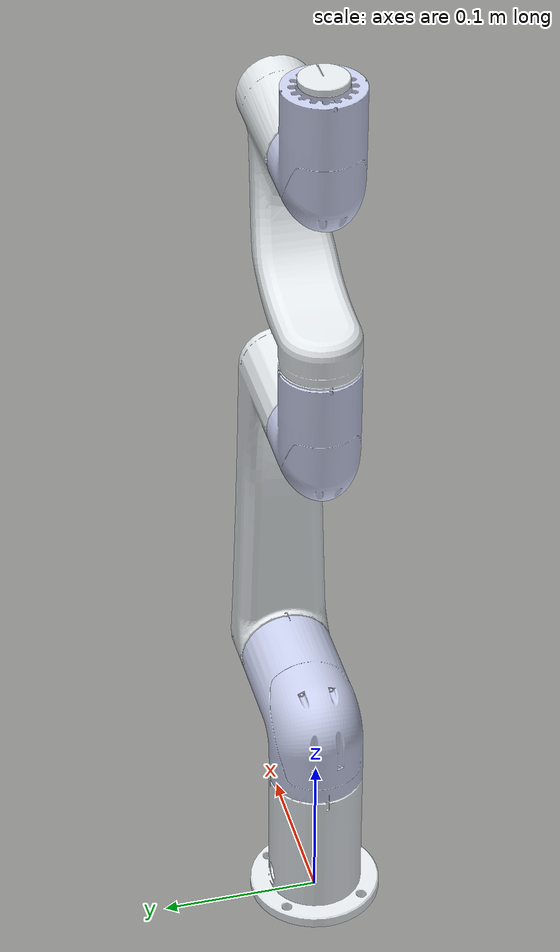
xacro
<?xml version="1.0"?>
<robot xmlns:xacro="http://www.ros.org/wiki/xacro" name="ti5_urdf">
    <xacro:arg name="initial_positions_file" default="initial_positions.yaml" />

    <!-- Import ti5_urdf urdf file -->
    <xacro:include filename="$(find ti5_urdf)/urdf/arm1.urdf" />

    <!-- Import control_xacro -->
    <xacro:include filename="ti5_urdf.ros2_control.xacro" />

    <xacro:ti5_urdf_ros2_control name="FakeSystem" initial_positions_file="$(arg initial_positions_file)"/>

</robot>

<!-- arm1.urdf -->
<robot
  name="ti5_urdf">
  <link
    name="base_link">
    <inertial>
      <origin
        xyz="-1.2717E-09 -0.0002019 0.03962"
        rpy="0 0 0" />
      <mass
        value="0.20694" />
      <inertia
        ixx="0.00032183"
        ixy="-5.3729E-08"
        ixz="-8.9527E-11"
        iyy="0.00032289"
        iyz="-7.6451E-07"
        izz="0.00019377" />
    </inertial>
    <visual>
      <origin
        xyz="0 0 0"
        rpy="0 0 0" />
      <geometry>
        <mesh
          filename="package://ti5_urdf/meshes/arm1/base_link.STL" />
      </geometry>
      <material
        name="">
        <color
          rgba="0.89804 0.91765 0.92941 1" />
      </material>
    </visual>
    <collision>
      <origin
        xyz="0 0 0"
        rpy="0 0 0" />
      <geometry>
        <mesh
          filename="package://ti5_urdf/meshes/arm1/base_link.STL" />
      </geometry>
    </collision>
  </link>
  <link
    name="A_Link">
    <inertial>
      <origin
        xyz="0.029013 3.1585E-06 0.030656"
        rpy="0 0 0" />
      <mass
        value="0.17006" />
      <inertia
        ixx="0.00014682"
        ixy="7.8151E-09"
        ixz="-5.421E-05"
        iyy="0.00020934"
        iyz="-1.9182E-08"
        izz="0.00020415" />
    </inertial>
    <visual>
      <origin
        xyz="0 0 0"
        rpy="0 0 0" />
      <geometry>
        <mesh
          filename="package://ti5_urdf/meshes/arm1/A_Link.STL" />
      </geometry>
      <material
        name="">
        <color
          rgba="0.79216 0.81961 0.93333 1" />
      </material>
    </visual>
    <collision>
      <origin
        xyz="0 0 0"
        rpy="0 0 0" />
      <geometry>
        <mesh
          filename="package://ti5_urdf/meshes/arm1/A_Link.STL" />
      </geometry>
    </collision>
  </link>
  <joint
    name="A"
    type="revolute">
    <origin
      xyz="-0.00018059 0 0.097"
      rpy="0 0 0" />
    <parent
      link="base_link" />
    <child
      link="A_Link" />
    <axis
      xyz="0 0 -1" />
    <limit
      lower="-3.14"
      upper="3.14"
      effort="0"
      velocity="0" />
  </joint>
  <link
    name="B_Link">
    <inertial>
      <origin
        xyz="1.7474E-06 0.11028 0.0067642"
        rpy="0 0 0" />
      <mass
        value="0.25215" />
      <inertia
        ixx="0.0018313"
        ixy="-9.1439E-09"
        ixz="-1.1859E-09"
        iyy="0.00014331"
        iyz="0.00013472"
        izz="0.0018654" />
    </inertial>
    <visual>
      <origin
        xyz="0 0 0"
        rpy="0 0 0" />
      <geometry>
        <mesh
          filename="package://ti5_urdf/meshes/arm1/B_Link.STL" />
      </geometry>
      <material
        name="">
        <color
          rgba="0.89804 0.91765 0.92941 1" />
      </material>
    </visual>
    <collision>
      <origin
        xyz="0 0 0"
        rpy="0 0 0" />
      <geometry>
        <mesh
          filename="package://ti5_urdf/meshes/arm1/B_Link.STL" />
      </geometry>
    </collision>
  </link>
  <joint
    name="B"
    type="revolute">
    <origin
      xyz="0.076181 0 0.039711"
      rpy="1.5708 0 1.5708" />
    <parent
      link="A_Link" />
    <child
      link="B_Link" />
    <axis
      xyz="0 0 -1" />
    <limit
      lower="-1.9"
      upper="1.9"
      effort="0"
      velocity="0" />
  </joint>
  <link
    name="C_Link">
    <inertial>
      <origin
        xyz="-4.9653E-06 -0.026863 0.027126"
        rpy="0 0 0" />
      <mass
        value="0.1028" />
      <inertia
        ixx="9.5672E-05"
        ixy="4.2051E-09"
        ixz="2.2694E-08"
        iyy="6.2054E-05"
        iyz="2.6805E-05"
        izz="8.7384E-05" />
    </inertial>
    <visual>
      <origin
        xyz="0 0 0"
        rpy="0 0 0" />
      <geometry>
        <mesh
          filename="package://ti5_urdf/meshes/arm1/C_Link.STL" />
      </geometry>
      <material
        name="">
        <color
          rgba="0.79216 0.81961 0.93333 1" />
      </material>
    </visual>
    <collision>
      <origin
        xyz="0 0 0"
        rpy="0 0 0" />
      <geometry>
        <mesh
          filename="package://ti5_urdf/meshes/arm1/C_Link.STL" />
      </geometry>
    </collision>
  </link>
  <joint
    name="C"
    type="revolute">
    <origin
      xyz="0 0.21038 -0.041"
      rpy="-3.1416 0 0" />
    <parent
      link="B_Link" />
    <child
      link="C_Link" />
    <axis
      xyz="0 0 -1" />
    <limit
      lower="-2.86"
      upper="2.86"
      effort="0"
      velocity="0" />
  </joint>
  <link
    name="D_Link">
    <inertial>
      <origin
        xyz="0.043748 -1.4463E-06 0.059027"
        rpy="0 0 0" />
      <mass
        value="0.24635" />
      <inertia
        ixx="0.00049775"
        ixy="6.0303E-09"
        ixz="-0.0002222"
        iyy="0.00066058"
        iyz="-1.5951E-08"
        izz="0.00028236" />
    </inertial>
    <visual>
      <origin
        xyz="0 0 0"
        rpy="0 0 0" />
      <geometry>
        <mesh
          filename="package://ti5_urdf/meshes/arm1/D_Link.STL" />
      </geometry>
      <material
        name="">
        <color
          rgba="0.89804 0.91765 0.92941 1" />
      </material>
    </visual>
    <collision>
      <origin
        xyz="0 0 0"
        rpy="0 0 0" />
      <geometry>
        <mesh
          filename="package://ti5_urdf/meshes/arm1/D_Link.STL" />
      </geometry>
    </collision>
  </link>
  <joint
    name="D"
    type="revolute">
    <origin
      xyz="0 -0.065909 0.035"
      rpy="1.5708 1.5708 0" />
    <parent
      link="C_Link" />
    <child
      link="D_Link" />
    <axis
      xyz="0 0 1" />
    <limit
      lower="-3.14"
      upper="3.14"
      effort="0"
      velocity="0" />
  </joint>
  <link
    name="E_Link">
    <inertial>
      <origin
        xyz="-0.026863 4.965E-06 0.027126"
        rpy="0 0 0" />
      <mass
        value="0.1028" />
      <inertia
        ixx="6.2054E-05"
        ixy="-4.2051E-09"
        ixz="2.6805E-05"
        iyy="9.5672E-05"
        iyz="-2.2694E-08"
        izz="8.7384E-05" />
    </inertial>
    <visual>
      <origin
        xyz="0 0 0"
        rpy="0 0 0" />
      <geometry>
        <mesh
          filename="package://ti5_urdf/meshes/arm1/E_Link.STL" />
      </geometry>
      <material
        name="">
        <color
          rgba="0.79216 0.81961 0.93333 1" />
      </material>
    </visual>
    <collision>
      <origin
        xyz="0 0 0"
        rpy="0 0 0" />
      <geometry>
        <mesh
          filename="package://ti5_urdf/meshes/arm1/E_Link.STL" />
      </geometry>
    </collision>
  </link>
  <joint
    name="E"
    type="revolute">
    <origin
      xyz="0.035 -9.0665E-05 0.124"
      rpy="-1.5708 1.5708 1.5708" />
    <parent
      link="D_Link" />
    <child
      link="E_Link" />
    <axis
      xyz="0 0 -1" />
    <limit
      lower="-2.9"
      upper="2.9"
      effort="0"
      velocity="0" />
  </joint>
  <link
    name="F_Link">
    <inertial>
      <origin
        xyz="-7.3069E-05 -6.524E-11 0.0024856"
        rpy="0 0 0" />
      <mass
        value="0.0093944" />
      <inertia
        ixx="5.4913E-07"
        ixy="7.475E-15"
        ixz="1.0861E-09"
        iyy="5.4216E-07"
        iyz="4.6867E-16"
        izz="1.0527E-06" />
    </inertial>
    <visual>
      <origin
        xyz="0 0 0"
        rpy="0 0 0" />
      <geometry>
        <mesh
          filename="package://ti5_urdf/meshes/arm1/F_Link.STL" />
      </geometry>
      <material
        name="">
        <color
          rgba="0.89804 0.91765 0.92941 1" />
      </material>
    </visual>
    <collision>
      <origin
        xyz="0 0 0"
        rpy="0 0 0" />
      <geometry>
        <mesh
          filename="package://ti5_urdf/meshes/arm1/F_Link.STL" />
      </geometry>
    </collision>
  </link>
  <joint
    name="F"
    type="revolute">
    <origin
      xyz="-0.065909 0 0.035"
      rpy="3.1416 1.5708 0" />
    <parent
      link="E_Link" />
    <child
      link="F_Link" />
    <axis
      xyz="0 0 1" />
    <limit
      lower="-3.14"
      upper="3.14"
      effort="0"
      velocity="0" />
  </joint>
</robot>
